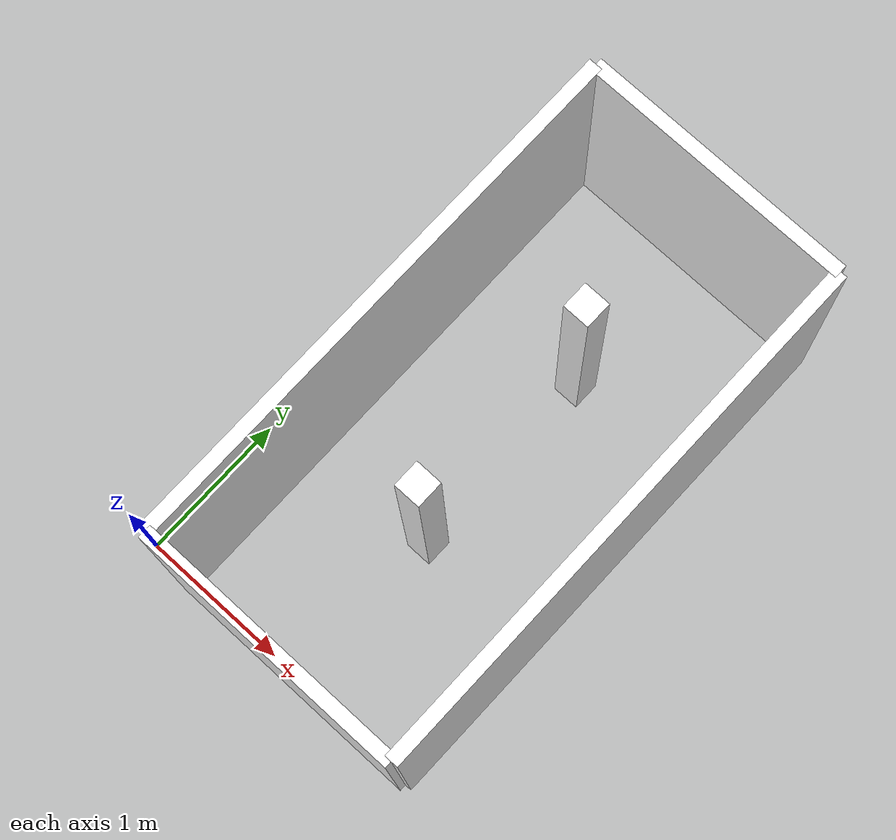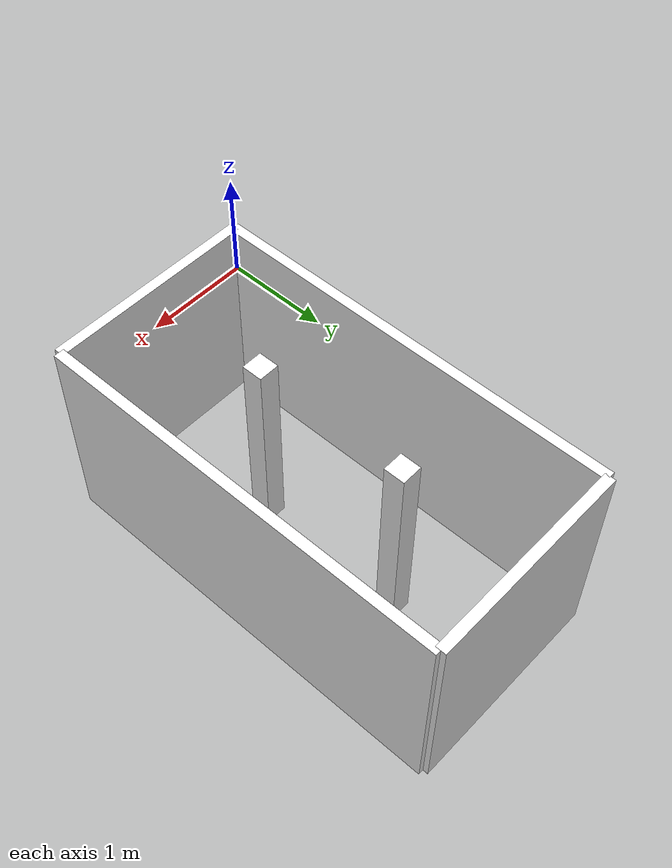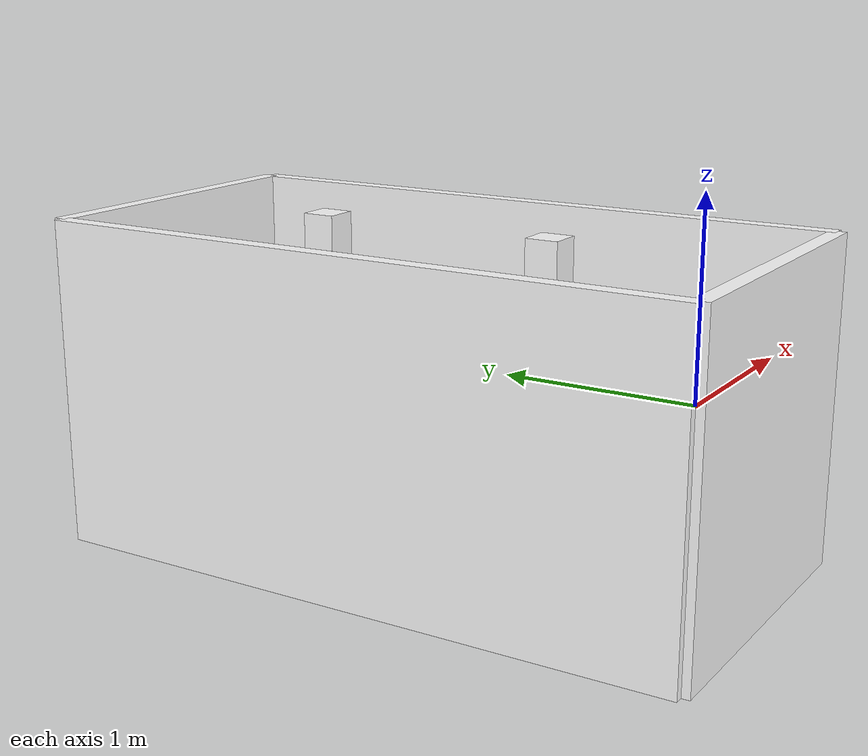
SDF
<?xml version="1.0"?>
<sdf version="1.7">
    <world name="hippo_world">

        <physics name="1ms" type="ode">
            <max_step_size>0.004</max_step_size>
            <real_time_factor>1.0</real_time_factor>
        </physics>

        <!-- required for camera sensor -->
        <plugin filename="gz-sim-sensors-system" name="gz::sim::systems::Sensors">
            <render_engine>ogre2</render_engine>
        </plugin>

        <gui fullscreen="0">

            <plugin filename="MinimalScene" name="3D View">
                <gz-gui>
                    <title>3D View</title>
                    <property type="bool" key="showTitleBar">false</property>
                    <property type="string" key="state">docked</property>
                </gz-gui>
                <engine>ogre2</engine>
                <scene>scene</scene>
                <ambient_light>1.0 1.0 1.0</ambient_light>
                <background_color>1.0 1.0 1.0</background_color>
                <camera_pose>8.3 7 7.8 0 0.5 -2.4</camera_pose>
                <camera_clip>
                    <near>0.01</near>
                    <far>100</far>
                </camera_clip>
                <horizontal_fov>60</horizontal_fov>
            </plugin>
            <plugin filename="EntityContextMenuPlugin" name="Entity context menu">
                <gz-gui>
                    <property key="state" type="string">floating</property>
                    <property key="width" type="double">5</property>
                    <property key="height" type="double">5</property>
                    <property key="showTitleBar" type="bool">false</property>
                </gz-gui>
            </plugin>
            <plugin filename="GzSceneManager" name="Scene Manager">
                <gz-gui>
                    <property key="resizable" type="bool">false</property>
                    <property key="width" type="double">5</property>
                    <property key="height" type="double">5</property>
                    <property key="state" type="string">floating</property>
                    <property key="showTitleBar" type="bool">false</property>
                </gz-gui>
            </plugin>
            <plugin filename="InteractiveViewControl" name="Interactive view control">
                <gz-gui>
                    <property key="resizable" type="bool">false</property>
                    <property key="width" type="double">5</property>
                    <property key="height" type="double">5</property>
                    <property key="state" type="string">floating</property>
                    <property key="showTitleBar" type="bool">false</property>
                </gz-gui>
            </plugin>
            <plugin filename="CameraTracking" name="Camera Tracking">
                <gz-gui>
                    <property key="resizable" type="bool">false</property>
                    <property key="width" type="double">5</property>
                    <property key="height" type="double">5</property>
                    <property key="state" type="string">floating</property>
                    <property key="showTitleBar" type="bool">false</property>
                </gz-gui>
            </plugin>
            <plugin filename="MarkerManager" name="Marker manager">
                <gz-gui>
                    <property key="resizable" type="bool">false</property>
                    <property key="width" type="double">5</property>
                    <property key="height" type="double">5</property>
                    <property key="state" type="string">floating</property>
                    <property key="showTitleBar" type="bool">false</property>
                </gz-gui>
            </plugin>
            <plugin filename="SelectEntities" name="Select Entities">
                <gz-gui>
                    <anchors target="Select entities">
                        <line own="right" target="right" />
                        <line own="top" target="top" />
                    </anchors>
                    <property key="resizable" type="bool">false</property>
                    <property key="width" type="double">5</property>
                    <property key="height" type="double">5</property>
                    <property key="state" type="string">floating</property>
                    <property key="showTitleBar" type="bool">false</property>
                </gz-gui>
            </plugin>
            <plugin filename="VisualizationCapabilities" name="Visualization Capabilities">
                <gz-gui>
                    <property key="resizable" type="bool">false</property>
                    <property key="width" type="double">5</property>
                    <property key="height" type="double">5</property>
                    <property key="state" type="string">floating</property>
                    <property key="showTitleBar" type="bool">false</property>
                </gz-gui>
            </plugin>

            <plugin filename="Spawn" name="Spawn Entities">
                <gz-gui>
                    <anchors target="Select entities">
                        <line own="right" target="right" />
                        <line own="top" target="top" />
                    </anchors>
                    <property key="resizable" type="bool">false</property>
                    <property key="width" type="double">5</property>
                    <property key="height" type="double">5</property>
                    <property key="state" type="string">floating</property>
                    <property key="showTitleBar" type="bool">false</property>
                </gz-gui>
            </plugin>

            <!-- World control -->
            <plugin filename="WorldControl" name="World control">
                <gz-gui>
                    <title>World control</title>
                    <property type="bool" key="showTitleBar">false</property>
                    <property type="bool" key="resizable">false</property>
                    <property type="double" key="height">72</property>
                    <property type="double" key="width">121</property>
                    <property type="double" key="z">1</property>

                    <property type="string" key="state">floating</property>
                    <anchors target="3D View">
                        <line own="left" target="left" />
                        <line own="bottom" target="bottom" />
                    </anchors>
                </gz-gui>

                <play_pause>true</play_pause>
                <step>true</step>
                <start_paused>true</start_paused>
                <use_event>true</use_event>

            </plugin>

            <!-- World statistics -->
            <plugin filename="WorldStats" name="World stats">
                <gz-gui>
                    <title>World stats</title>
                    <property type="bool" key="showTitleBar">false</property>
                    <property type="bool" key="resizable">false</property>
                    <property type="double" key="height">110</property>
                    <property type="double" key="width">290</property>
                    <property type="double" key="z">1</property>

                    <property type="string" key="state">floating</property>
                    <anchors target="3D View">
                        <line own="right" target="right" />
                        <line own="bottom" target="bottom" />
                    </anchors>
                </gz-gui>

                <sim_time>true</sim_time>
                <real_time>true</real_time>
                <real_time_factor>true</real_time_factor>
                <iterations>true</iterations>
            </plugin>
            <!-- Translate / rotate -->
            <plugin filename="TransformControl" name="Transform control">
                <gz-gui>
                    <property key="resizable" type="bool">false</property>
                    <property key="x" type="double">0</property>
                    <property key="y" type="double">0</property>
                    <property key="width" type="double">250</property>
                    <property key="height" type="double">50</property>
                    <property key="state" type="string">floating</property>
                    <property key="showTitleBar" type="bool">false</property>
                    <property key="cardBackground" type="string">#777777</property>
                </gz-gui>
            </plugin>

            <!-- Inspector -->
            <plugin filename="ComponentInspector" name="Component inspector">
                <gz-gui>
                    <property type="string" key="state">docked</property>
                </gz-gui>
            </plugin>

            <plugin filename="EntityTree" name="Entity tree">
                <gz-gui>
                    <property type="string" key="state">docked</property>
                </gz-gui>
            </plugin>
        </gui>

        <plugin filename="libgz-sim-physics-system.so" name="gz::sim::systems::Physics"></plugin>
        <plugin filename="libgz-sim-user-commands-system.so" name="gz::sim::systems::UserCommands"></plugin>
        <plugin filename="libgz-sim-scene-broadcaster-system.so" name="gz::sim::systems::SceneBroadcaster"></plugin>
        <plugin filename="libgz-sim-imu-system.so" name="gz::sim::systems::Imu"></plugin>
        <!-- FT Plugin -->
        <plugin filename="gz-sim-forcetorque-system" name="gz::sim::systems::ForceTorque"/>

        <light type="directional" name="sun1">
            <cast_shadows>true</cast_shadows>
            <pose>0 0 10 0 0 0</pose>
            <diffuse>1 1 1 1</diffuse>
            <specular>1 1 1 1</specular>
            <ambient>1 1 1 1</ambient>
            <attenuation>
                <range>1000</range>
                <constant>0.9</constant>
                <linear>0.01</linear>
                <quadratic>0.001</quadratic>
            </attenuation>
            <direction>0.5 0.5 -0.9</direction>
        </light>

        <light type="directional" name="sun2">
            <cast_shadows>true</cast_shadows>
            <pose>0 0 10 0 0 0</pose>
            <diffuse>1 1 1 1</diffuse>
            <specular>1 1 1 1</specular>
            <ambient>1 1 1 1</ambient>
            <attenuation>
                <range>1000</range>
                <constant>0.9</constant>
                <linear>0.01</linear>
                <quadratic>0.001</quadratic>
            </attenuation>
            <direction>-0.5 0.5 -0.9</direction>
        </light>

        <light type="directional" name="sun3">
            <cast_shadows>true</cast_shadows>
            <pose>0 0 10 0 0 0</pose>
            <diffuse>1 1 1 1</diffuse>
            <specular>1 1 1 1</specular>
            <ambient>1 1 1 1</ambient>
            <attenuation>
                <range>1000</range>
                <constant>0.9</constant>
                <linear>0.01</linear>
                <quadratic>0.001</quadratic>
            </attenuation>
            <direction>0.5 0.1 0.9</direction>
        </light>

        <!-- Test obstacles -->
        <model name="box_obstacle_1">
            <static>true</static>
            <pose>1 1.3 -0.5 0 0 0</pose>
            <link name="link">
                <collision name="collision">
                    <geometry><box><size>0.2 0.2 2</size></box></geometry>
                </collision>
                <visual name="visual">
                    <geometry><box><size>0.2 0.2 2</size></box></geometry>
                    <material>
                        <ambient>1 1 1 1</ambient>
                        <diffuse>1 1 1 1</diffuse>
                        <specular>1 1 1 1</specular>
                        <pbr>
                            <metal>
                                <metalness>1</metalness>
                                <roughness>0.5</roughness>
                            </metal>
                        </pbr>
                    </material>
                </visual>
            </link>
        </model>

        <model name="box_obstacle_2">
            <static>true</static>
            <pose>1 2.8 -0.5 0 0 0</pose>
            <link name="link">
                <collision name="collision">
                    <geometry><box><size>0.2 0.2 2</size></box></geometry>
                </collision>
                <visual name="visual">
                    <geometry><box><size>0.2 0.2 2</size></box></geometry>
                    <material>
                        <ambient>1 1 1 1</ambient>
                        <diffuse>1 1 1 1</diffuse>
                        <specular>1 1 1 1</specular>
                        <pbr>
                            <metal>
                                <metalness>1</metalness>
                                <roughness>0.5</roughness>
                            </metal>
                        </pbr>
                    </material>
                </visual>
            </link>
        </model>

        <model name="wall_1">
            <static>true</static>
            <pose>0 2 -0.5 0 0 0</pose>
            <link name="link">
                <collision name="collision">
                    <geometry><box><size>0.1 4 2</size></box></geometry>
                </collision>
                <visual name="visual">
                    <geometry><box><size>0.1 4 2</size></box></geometry>
                    <material>
                        <ambient>1 1 1 1</ambient>
                        <diffuse>1 1 1 1</diffuse>
                        <specular>1 1 1 1</specular>
                        <pbr>
                            <metal>
                                <metalness>1</metalness>
                                <roughness>0.5</roughness>
                            </metal>
                        </pbr>
                    </material>
                </visual>
            </link>
        </model>

        <model name="wall_2">
            <static>true</static>
            <pose>1 0 -0.5 0 0 0</pose>
            <link name="link">
                <collision name="collision">
                    <geometry><box><size>2 0.1 2</size></box></geometry>
                </collision>
                <visual name="visual">
                    <geometry><box><size>2 0.1 2</size></box></geometry>
                    <material>
                        <ambient>1 1 1 1</ambient>
                        <diffuse>1 1 1 1</diffuse>
                        <specular>1 1 1 1</specular>
                        <pbr>
                            <metal>
                                <metalness>1</metalness>
                                <roughness>0.5</roughness>
                            </metal>
                        </pbr>
                    </material>
                </visual>
            </link>
        </model>

        <model name="wall_3">
            <static>true</static>
            <pose>2 2 -0.5 0 0 0</pose>
            <link name="link">
                <collision name="collision">
                    <geometry><box><size>0.1 4 2</size></box></geometry>
                </collision>
                <visual name="visual">
                    <geometry><box><size>0.1 4 2</size></box></geometry>
                    <material>
                        <ambient>1 1 1 1</ambient>
                        <diffuse>1 1 1 1</diffuse>
                        <specular>1 1 1 1</specular>
                        <pbr>
                            <metal>
                                <metalness>1</metalness>
                                <roughness>0.5</roughness>
                            </metal>
                        </pbr>
                    </material>
                </visual>
            </link>
        </model>

        <model name="wall_4">
            <static>true</static>
            <pose>1 4 -0.5 0 0 0</pose>
            <link name="link">
                <collision name="collision">
                    <geometry><box><size>2 0.1 2</size></box></geometry>
                </collision>
                <visual name="visual">
                    <geometry><box><size>2 0.1 2</size></box></geometry>
                    <material>
                        <ambient>1 1 1 1</ambient>
                        <diffuse>1 1 1 1</diffuse>
                        <specular>1 1 1 1</specular>
                        <pbr>
                            <metal>
                                <metalness>1</metalness>
                                <roughness>0.5</roughness>
                            </metal>
                        </pbr>
                    </material>
                </visual>
            </link>
        </model>
    </world>
</sdf>
